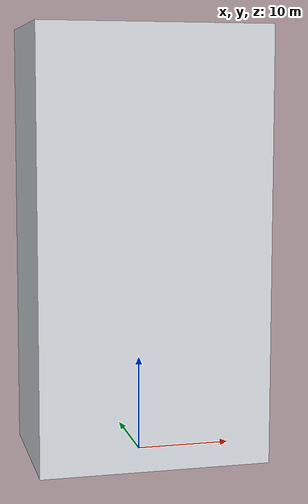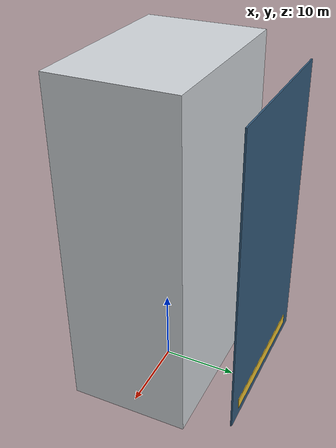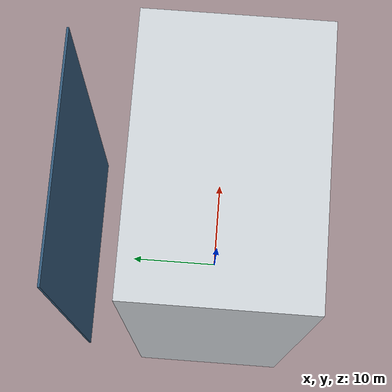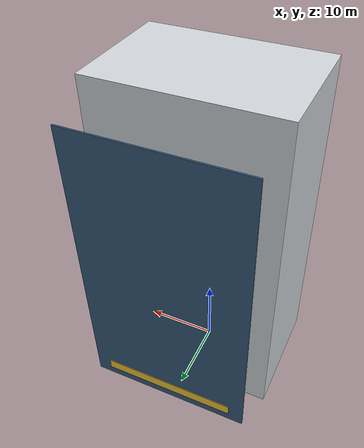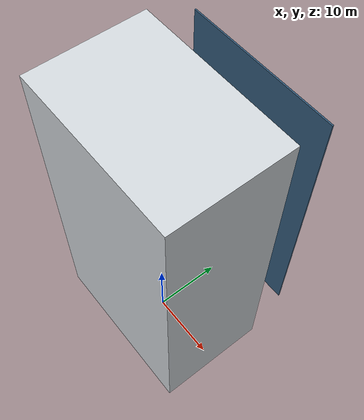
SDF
<?xml version="1.0" ?>
<sdf version="1.8">
  <model name="xinzhuang_transit_hotel">
    <static>true</static>
    <link name="hotel_link">
      <collision name="col"><pose>0 0 22.5 0 0 0</pose><geometry><box><size>24.0 16.0 45.0</size></box></geometry></collision>
      <visual name="main_vis"><pose>0 0 22.5 0 0 0</pose><geometry><box><size>24.0 16.0 45.0</size></box></geometry><material><ambient>0.75 0.76 0.78 1</ambient><diffuse>0.82 0.84 0.86 1</diffuse></material></visual>
      <visual name="hotel_curtain"><pose>0 14.1 22.5 0 0 0</pose><geometry><box><size>22.0 0.2 40.0</size></box></geometry><material><ambient>0.15 0.25 0.35 0.92</ambient><diffuse>0.20 0.35 0.48 0.92</diffuse><specular>0.9 0.95 1.0 1</specular></material></visual>
      <visual name="hotel_sign"><pose>0 14.2 4.5 0 0 0</pose><geometry><box><size>18.0 0.15 1.5</size></box></geometry><material><ambient>0.82 0.65 0.15 1</ambient><diffuse>0.95 0.78 0.20 1</diffuse><emissive>0.3 0.22 0.05 1</emissive></material></visual>
    </link>
  </model>
</sdf>
